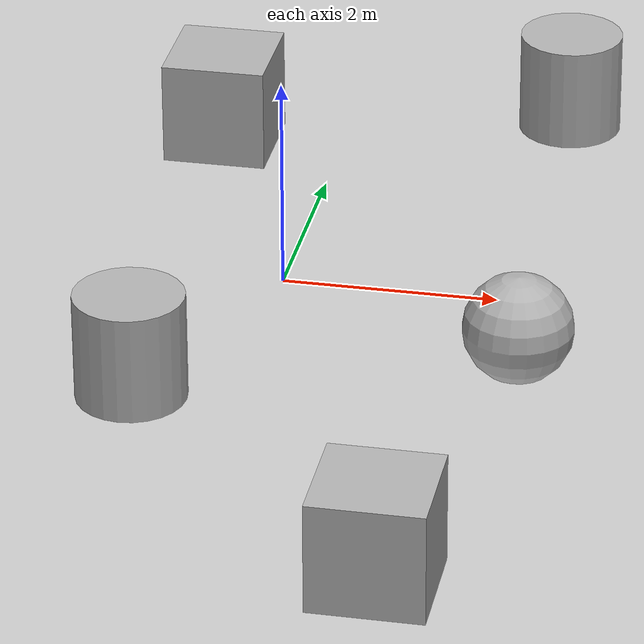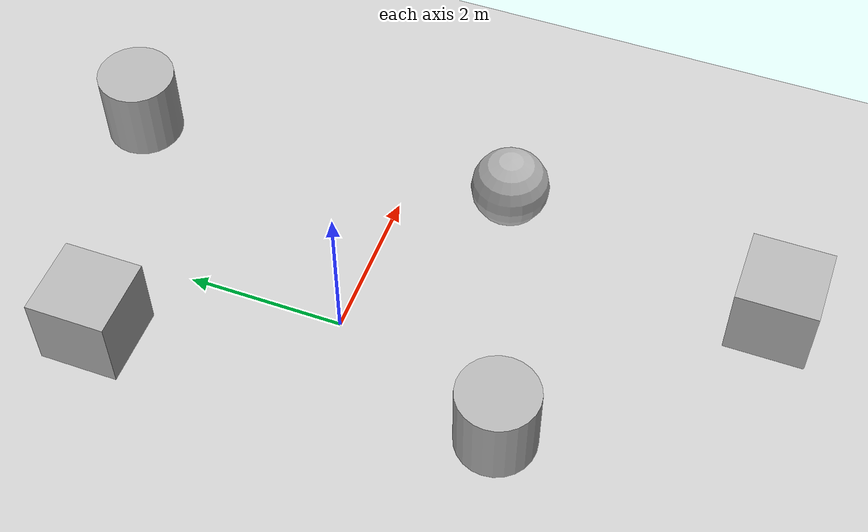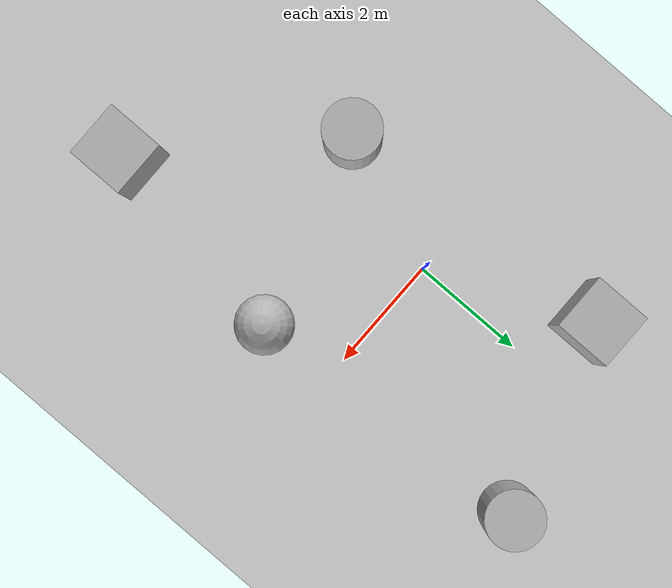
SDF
<sdf version='1.10'>
  <world name='empty'>
    <physics name='1ms' type='ignored'>
      <max_step_size>0.001</max_step_size>
      <real_time_factor>1</real_time_factor>
      <real_time_update_rate>1000</real_time_update_rate>
    </physics>
    <plugin name='gz::sim::systems::Physics' filename='gz-sim-physics-system'/>
    <plugin name='gz::sim::systems::UserCommands' filename='gz-sim-user-commands-system'/>
    <plugin name='gz::sim::systems::SceneBroadcaster' filename='gz-sim-scene-broadcaster-system'/>
    <plugin name='gz::sim::systems::Sensors' filename='gz-sim-sensors-system'>
      <render_engine>ogre2</render_engine>
    </plugin>
    <plugin name='gz::sim::systems::Contact' filename='gz-sim-contact-system'/>
    <gravity>0 0 -9.8000000000000007</gravity>
    <magnetic_field>5.5644999999999998e-06 2.2875799999999999e-05 -4.2388400000000002e-05</magnetic_field>
    <atmosphere type='adiabatic'/>
    <scene>
      <ambient>0.400000006 0.400000006 0.400000006 1</ambient>
      <background>0.699999988 0.699999988 0.699999988 1</background>
      <shadows>true</shadows>
    </scene>
    <model name='ground_plane'>
      <static>true</static>
      <link name='link'>
        <collision name='collision'>
          <geometry>
            <plane>
              <normal>0 0 1</normal>
              <size>100 100</size>
            </plane>
          </geometry>
          <surface>
            <friction>
              <ode/>
            </friction>
            <bounce/>
            <contact/>
          </surface>
        </collision>
        <visual name='visual'>
          <geometry>
            <plane>
              <normal>0 0 1</normal>
              <size>100 100</size>
            </plane>
          </geometry>
          <material>
            <ambient>0.800000012 0.800000012 0.800000012 1</ambient>
            <diffuse>0.800000012 0.800000012 0.800000012 1</diffuse>
            <specular>0.800000012 0.800000012 0.800000012 1</specular>
          </material>
        </visual>
        <pose>0 0 0 0 0 0</pose>
        <inertial>
          <pose>0 0 0 0 0 0</pose>
          <mass>1</mass>
          <inertia>
            <ixx>1</ixx>
            <ixy>0</ixy>
            <ixz>0</ixz>
            <iyy>1</iyy>
            <iyz>0</iyz>
            <izz>1</izz>
          </inertia>
        </inertial>
        <enable_wind>false</enable_wind>
      </link>
      <pose>0 0 0 0 0 0</pose>
      <self_collide>false</self_collide>
    </model>
    <model name='box'>
      <pose>1.8029219467110664 -4.9402323017846799 0.49999999980497606 1.0048033485058014e-21 -2.4640853465547739e-21 -3.9210766489770922e-22</pose>
      <link name='box_link'>
        <inertial>
          <inertia>
            <ixx>0.16666</ixx>
            <ixy>0</ixy>
            <ixz>0</ixz>
            <iyy>0.16666</iyy>
            <iyz>0</iyz>
            <izz>0.16666</izz>
          </inertia>
          <mass>1</mass>
          <pose>0 0 0 0 0 0</pose>
        </inertial>
        <collision name='box_collision'>
          <geometry>
            <box>
              <size>1 1 1</size>
            </box>
          </geometry>
          <surface>
            <friction>
              <ode/>
            </friction>
            <bounce/>
            <contact/>
          </surface>
        </collision>
        <visual name='box_visual'>
          <geometry>
            <box>
              <size>1 1 1</size>
            </box>
          </geometry>
          <material>
            <ambient>0.300000012 0.300000012 0.300000012 1</ambient>
            <diffuse>0.699999988 0.699999988 0.699999988 1</diffuse>
            <specular>1 1 1 1</specular>
          </material>
        </visual>
        <pose>0 0 0 0 0 0</pose>
        <enable_wind>false</enable_wind>
      </link>
      <static>false</static>
      <self_collide>false</self_collide>
    </model>
    <model name='cylinder'>
      <pose>2.1278173043812618 3.7029515542140965 0.49999943207967634 2.5210160480119534e-20 1.5537065464925922e-20 -8.8626556358186986e-21</pose>
      <link name='cylinder_link'>
        <inertial>
          <inertia>
            <ixx>0.14580000000000001</ixx>
            <ixy>0</ixy>
            <ixz>0</ixz>
            <iyy>0.14580000000000001</iyy>
            <iyz>0</iyz>
            <izz>0.125</izz>
          </inertia>
          <mass>1</mass>
          <pose>0 0 0 0 0 0</pose>
        </inertial>
        <collision name='cylinder_collision'>
          <geometry>
            <cylinder>
              <radius>0.5</radius>
              <length>1</length>
            </cylinder>
          </geometry>
          <surface>
            <friction>
              <ode/>
            </friction>
            <bounce/>
            <contact/>
          </surface>
        </collision>
        <visual name='cylinder_visual'>
          <geometry>
            <cylinder>
              <radius>0.5</radius>
              <length>1</length>
            </cylinder>
          </geometry>
          <material>
            <ambient>0.300000012 0.300000012 0.300000012 1</ambient>
            <diffuse>0.699999988 0.699999988 0.699999988 1</diffuse>
            <specular>1 1 1 1</specular>
          </material>
        </visual>
        <pose>0 0 0 0 0 0</pose>
        <enable_wind>false</enable_wind>
      </link>
      <static>false</static>
      <self_collide>false</self_collide>
    </model>
    <model name='box_0'>
      <pose>-1.1568402182909097 2.7027382326980418 0.49999999990199806 6.2287739151293738e-22 9.3279666454713669e-22 -3.6315533669320137e-22</pose>
      <link name='box_link'>
        <inertial>
          <inertia>
            <ixx>0.16666</ixx>
            <ixy>0</ixy>
            <ixz>0</ixz>
            <iyy>0.16666</iyy>
            <iyz>0</iyz>
            <izz>0.16666</izz>
          </inertia>
          <mass>1</mass>
          <pose>0 0 0 0 0 0</pose>
        </inertial>
        <collision name='box_collision'>
          <geometry>
            <box>
              <size>1 1 1</size>
            </box>
          </geometry>
          <surface>
            <friction>
              <ode/>
            </friction>
            <bounce/>
            <contact/>
          </surface>
        </collision>
        <visual name='box_visual'>
          <geometry>
            <box>
              <size>1 1 1</size>
            </box>
          </geometry>
          <material>
            <ambient>0.300000012 0.300000012 0.300000012 1</ambient>
            <diffuse>0.699999988 0.699999988 0.699999988 1</diffuse>
            <specular>1 1 1 1</specular>
          </material>
        </visual>
        <pose>0 0 0 0 0 0</pose>
        <enable_wind>false</enable_wind>
      </link>
      <static>false</static>
      <self_collide>false</self_collide>
    </model>
    <model name='sphere'>
      <pose>2.4010736411776943 -1.3615778441046271 0.499999999902001 0 0 0</pose>
      <link name='sphere_link'>
        <inertial>
          <inertia>
            <ixx>0.10000000000000001</ixx>
            <ixy>0</ixy>
            <ixz>0</ixz>
            <iyy>0.10000000000000001</iyy>
            <iyz>0</iyz>
            <izz>0.10000000000000001</izz>
          </inertia>
          <mass>1</mass>
          <pose>0 0 0 0 0 0</pose>
        </inertial>
        <collision name='sphere_collision'>
          <geometry>
            <sphere>
              <radius>0.5</radius>
            </sphere>
          </geometry>
          <surface>
            <friction>
              <ode/>
            </friction>
            <bounce/>
            <contact/>
          </surface>
        </collision>
        <visual name='sphere_visual'>
          <geometry>
            <sphere>
              <radius>0.5</radius>
            </sphere>
          </geometry>
          <material>
            <ambient>0.300000012 0.300000012 0.300000012 1</ambient>
            <diffuse>0.699999988 0.699999988 0.699999988 1</diffuse>
            <specular>1 1 1 1</specular>
          </material>
        </visual>
        <pose>0 0 0 0 0 0</pose>
        <enable_wind>false</enable_wind>
      </link>
      <static>false</static>
      <self_collide>false</self_collide>
    </model>
    <model name='cylinder_0'>
      <pose>-0.88223934235302526 -2.2958844867691095 0.49999942638036005 -3.7763230730937767e-20 -1.4617335543755359e-19 9.6821794003308738e-21</pose>
      <link name='cylinder_link'>
        <inertial>
          <inertia>
            <ixx>0.14580000000000001</ixx>
            <ixy>0</ixy>
            <ixz>0</ixz>
            <iyy>0.14580000000000001</iyy>
            <iyz>0</iyz>
            <izz>0.125</izz>
          </inertia>
          <mass>1</mass>
          <pose>0 0 0 0 0 0</pose>
        </inertial>
        <collision name='cylinder_collision'>
          <geometry>
            <cylinder>
              <radius>0.5</radius>
              <length>1</length>
            </cylinder>
          </geometry>
          <surface>
            <friction>
              <ode/>
            </friction>
            <bounce/>
            <contact/>
          </surface>
        </collision>
        <visual name='cylinder_visual'>
          <geometry>
            <cylinder>
              <radius>0.5</radius>
              <length>1</length>
            </cylinder>
          </geometry>
          <material>
            <ambient>0.300000012 0.300000012 0.300000012 1</ambient>
            <diffuse>0.699999988 0.699999988 0.699999988 1</diffuse>
            <specular>1 1 1 1</specular>
          </material>
        </visual>
        <pose>0 0 0 0 0 0</pose>
        <enable_wind>false</enable_wind>
      </link>
      <static>false</static>
      <self_collide>false</self_collide>
    </model>
    <light name='sun' type='directional'>
      <pose>0 0 10 0 0 0</pose>
      <cast_shadows>true</cast_shadows>
      <intensity>1</intensity>
      <direction>-0.5 0.10000000000000001 -0.90000000000000002</direction>
      <diffuse>0.800000012 0.800000012 0.800000012 1</diffuse>
      <specular>0.200000003 0.200000003 0.200000003 1</specular>
      <attenuation>
        <range>1000</range>
        <linear>0.01</linear>
        <constant>0.90000000000000002</constant>
        <quadratic>0.001</quadratic>
      </attenuation>
      <spot>
        <inner_angle>0</inner_angle>
        <outer_angle>0</outer_angle>
        <falloff>0</falloff>
      </spot>
    </light>
  </world>
</sdf>
